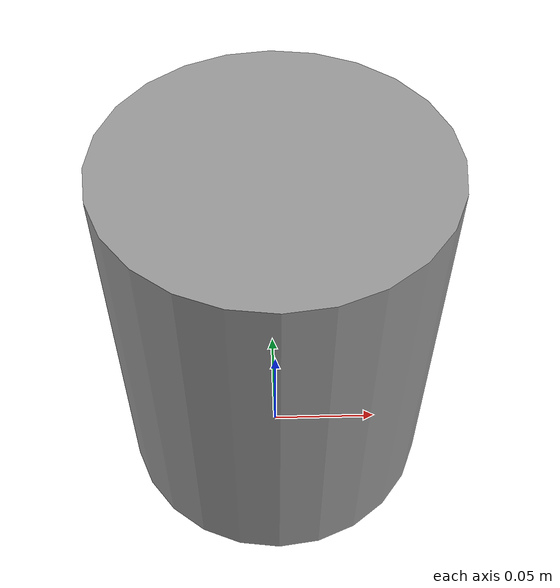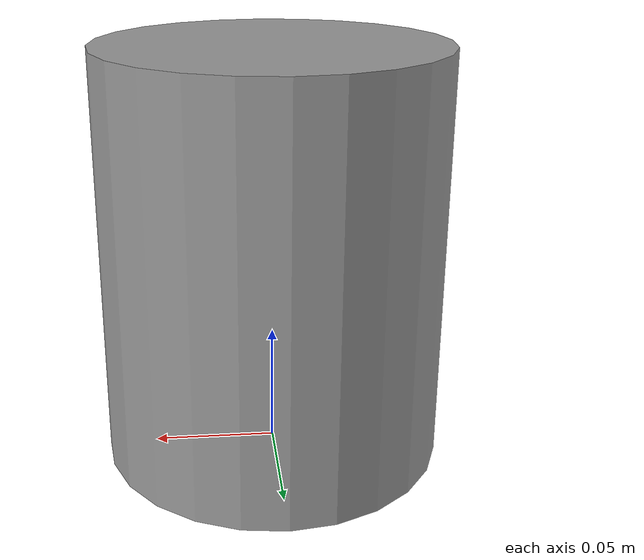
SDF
<?xml version='1.0'?>
<sdf version='1.6'>
  <model name='pot1'>
    <link name='link_0'>
      <pose frame=''>0 0 0.085 0 -0 0</pose>
      <visual name='visual'>
        <geometry>
          <cylinder>
            <radius>0.07</radius>
            <length>0.17</length>
          </cylinder>
        </geometry>
        <material>
          <lighting>1</lighting>
          <script>
            <uri>file://media/materials/scripts/gazebo.material</uri>
            <name>Gazebo/Grey</name>
          </script>
          <shader type='vertex'>
            <normal_map>__default__</normal_map>
          </shader>
          <ambient>0.1 0.1 0.1 1</ambient>
          <diffuse>0.05 0.05 0.05 1</diffuse>
          <specular>0.01 0.01 0.01 1</specular>
          <emissive>0 0 0 1</emissive>
        </material>
        <cast_shadows>1</cast_shadows>
      </visual>
      <collision name='collision'>
        <geometry>
          <cylinder>
            <radius>0.07</radius>
            <length>0.17</length>
          </cylinder>
        </geometry>
      </collision>
    </link>
    <static>1</static>
    <allow_auto_disable>1</allow_auto_disable>
  </model>
</sdf>
